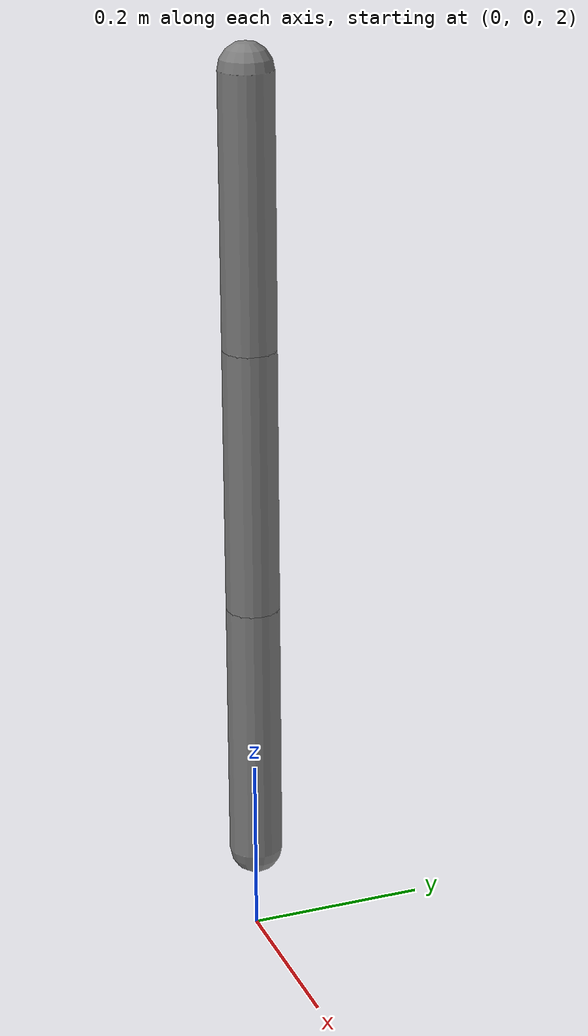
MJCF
<mujoco model="chain-gravity">
  <option gravity="0 0 -9.81" timestep="0.001"/>
  <compiler angle="radian"/>
  <worldbody>
    <body name="link1" pos="0 0 3">
      <freejoint name="root"/>
      <geom type="capsule" size="0.03" fromto="0 0 0 0 0 -0.3" mass="2.0"
            contype="0" conaffinity="0"/>
      <body name="link2" pos="0 0 -0.3">
        <joint name="j2" type="hinge" axis="0 1 0"/>
        <geom type="capsule" size="0.03" fromto="0 0 0 0 0 -0.3" mass="1.0"
              contype="0" conaffinity="0"/>
        <body name="link3" pos="0 0 -0.3">
          <joint name="j3" type="hinge" axis="0 1 0"/>
          <geom type="capsule" size="0.03" fromto="0 0 0 0 0 -0.3" mass="0.5"
                contype="0" conaffinity="0"/>
        </body>
      </body>
    </body>
  </worldbody>
  <sensor>
    <subtreelinvel name="sub_vel" body="link1"/>
  </sensor>
</mujoco>
